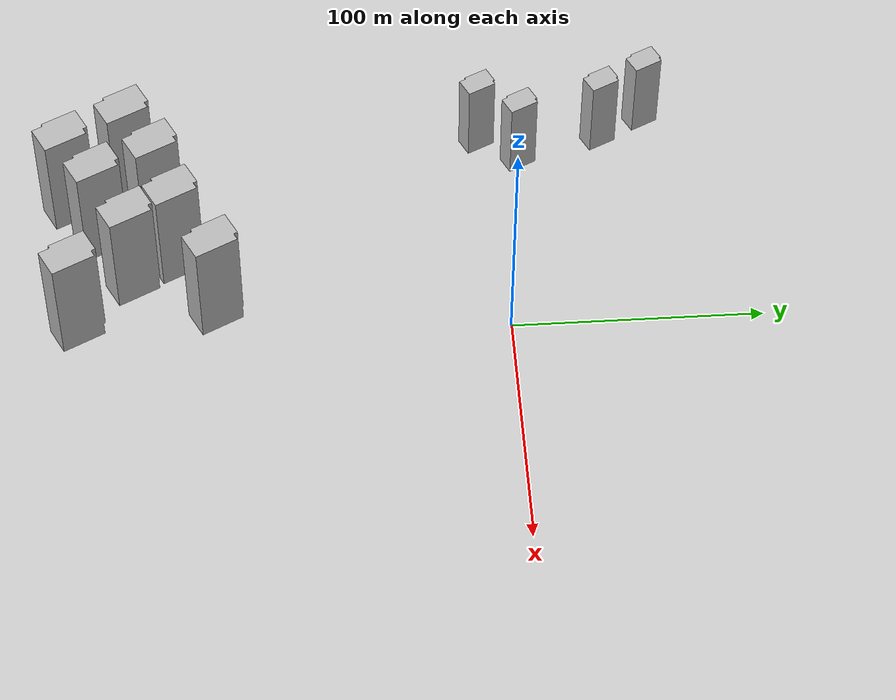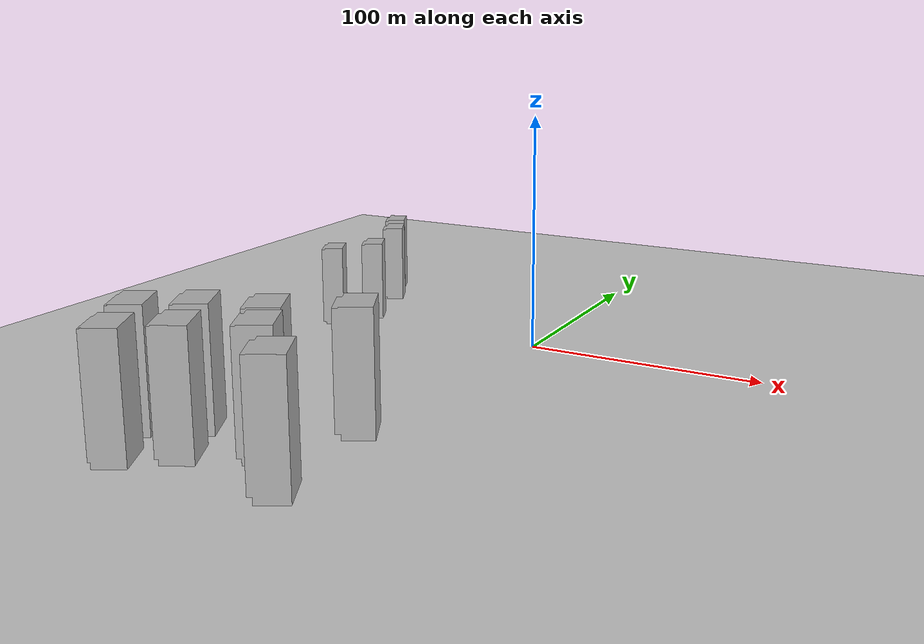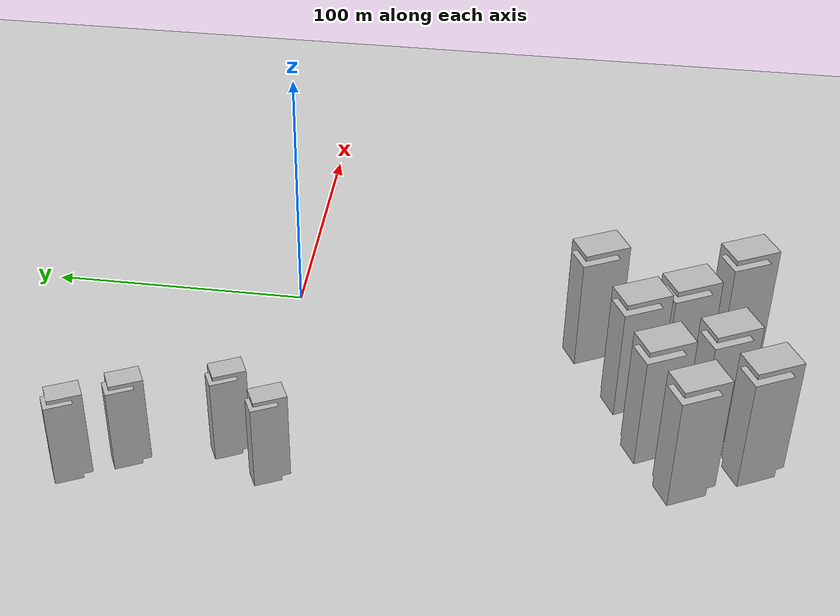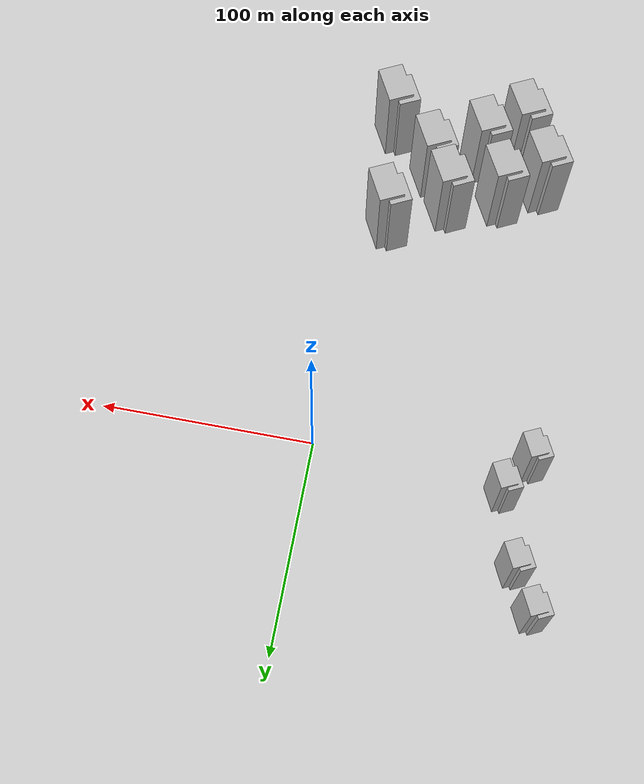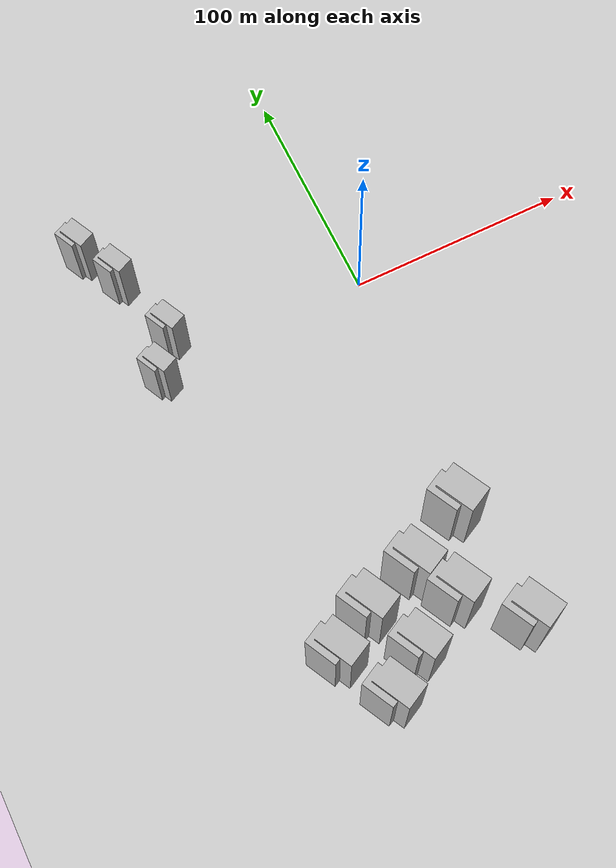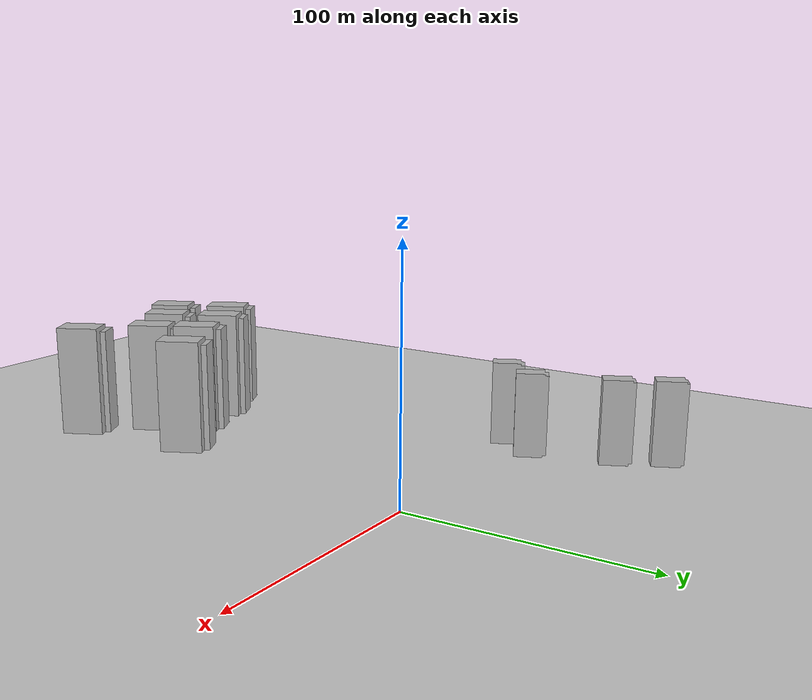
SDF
<sdf version="1.7">
 <world name="default">
  <model name="ground_plane">
   <static>1</static>
   <link name="link">
    <collision name="collision">
     <geometry><plane><normal>0 0 1</normal><size>100 100</size></plane></geometry>
     <surface><friction><ode><mu>100</mu><mu2>50</mu2></ode></friction></surface>
    </collision>
    <visual name="visual">
     <cast_shadows>0</cast_shadows>
     <geometry><plane><normal>0 0 1</normal><size>100 100</size></plane></geometry>
     <material>
      <script><uri>file://media/materials/scripts/gazebo.material</uri><name>Gazebo/Grey</name></script>
     </material>
    </visual>
   </link>
  </model>
  <model name="apartment1_clone_15_clone_3_clone_0_clone_12">
   <static>1</static>
   <link name="link_0">
    <inertial>
     <mass>1</mass>
     <inertia>
      <ixx>0.166667</ixx>
      <ixy>0</ixy>
      <ixz>0</ixz>
      <iyy>0.166667</iyy>
      <iyz>0</iyz>
      <izz>0.166667</izz>
     </inertia>
    </inertial>
    <pose>1e-06 -0 0 0 -0 0</pose>
    <visual name="visual">
     <geometry>
      <mesh><uri>model://apartment1/scripts/apartment1.dae</uri><scale>0.3 0.3 0.4</scale></mesh>
     </geometry>
     <material>
      <lighting>1</lighting>
      <script><uri>model://apartment1/scripts/apartment1.jpg</uri><name>__default__</name></script>
      <shader type="pixel"/>
     </material>
    </visual>
    <collision name="collision">
     <geometry>
      <mesh><uri>model://apartment1/scripts/apartment1.dae</uri><scale>0.3 0.3 0.4</scale></mesh>
     </geometry>
     <surface>
      <friction>
       <ode><mu>1</mu><mu2>1</mu2><fdir1>0 0 0</fdir1><slip1>0</slip1><slip2>0</slip2></ode>
       <torsional>
        <coefficient>1</coefficient>
        <patch_radius>0</patch_radius>
        <surface_radius>0</surface_radius>
        <use_patch_radius>1</use_patch_radius>
        <ode><slip>0</slip></ode>
       </torsional>
      </friction>
      <bounce><restitution_coefficient>0</restitution_coefficient><threshold>1e+06</threshold></bounce>
      <contact>
       <collide_without_contact>0</collide_without_contact>
       <collide_without_contact_bitmask>1</collide_without_contact_bitmask>
       <collide_bitmask>1</collide_bitmask>
       <ode>
        <soft_cfm>0</soft_cfm>
        <soft_erp>0.2</soft_erp>
        <kp>1e+13</kp>
        <kd>1</kd>
        <max_vel>0.01</max_vel>
        <min_depth>0</min_depth>
       </ode>
       <bullet>
        <split_impulse>1</split_impulse>
        <split_impulse_penetration_threshold>-0.01</split_impulse_penetration_threshold>
        <soft_cfm>0</soft_cfm>
        <soft_erp>0.2</soft_erp>
        <kp>1e+13</kp>
        <kd>1</kd>
       </bullet>
      </contact>
     </surface>
    </collision>
   </link>
   <static>0</static>
   <pose>-7.35773 -170.94 0 0 -0 0.473091</pose>
  </model>
  <model name="apartment1_clone_15_clone_3_clone_0_clone_13">
   <static>1</static>
   <link name="link_0">
    <inertial>
     <mass>1</mass>
     <inertia>
      <ixx>0.166667</ixx>
      <ixy>0</ixy>
      <ixz>0</ixz>
      <iyy>0.166667</iyy>
      <iyz>0</iyz>
      <izz>0.166667</izz>
     </inertia>
    </inertial>
    <pose>1e-06 -0 0 0 -0 0</pose>
    <visual name="visual">
     <geometry>
      <mesh><uri>model://apartment1/scripts/apartment1.dae</uri><scale>0.3 0.3 0.4</scale></mesh>
     </geometry>
     <material>
      <lighting>1</lighting>
      <script><uri>model://apartment1/scripts/apartment1.jpg</uri><name>__default__</name></script>
      <shader type="pixel"/>
     </material>
    </visual>
    <collision name="collision">
     <geometry>
      <mesh><uri>model://apartment1/scripts/apartment1.dae</uri><scale>0.3 0.3 0.4</scale></mesh>
     </geometry>
     <surface>
      <friction>
       <ode><mu>1</mu><mu2>1</mu2><fdir1>0 0 0</fdir1><slip1>0</slip1><slip2>0</slip2></ode>
       <torsional>
        <coefficient>1</coefficient>
        <patch_radius>0</patch_radius>
        <surface_radius>0</surface_radius>
        <use_patch_radius>1</use_patch_radius>
        <ode><slip>0</slip></ode>
       </torsional>
      </friction>
      <bounce><restitution_coefficient>0</restitution_coefficient><threshold>1e+06</threshold></bounce>
      <contact>
       <collide_without_contact>0</collide_without_contact>
       <collide_without_contact_bitmask>1</collide_without_contact_bitmask>
       <collide_bitmask>1</collide_bitmask>
       <ode>
        <soft_cfm>0</soft_cfm>
        <soft_erp>0.2</soft_erp>
        <kp>1e+13</kp>
        <kd>1</kd>
        <max_vel>0.01</max_vel>
        <min_depth>0</min_depth>
       </ode>
       <bullet>
        <split_impulse>1</split_impulse>
        <split_impulse_penetration_threshold>-0.01</split_impulse_penetration_threshold>
        <soft_cfm>0</soft_cfm>
        <soft_erp>0.2</soft_erp>
        <kp>1e+13</kp>
        <kd>1</kd>
       </bullet>
      </contact>
     </surface>
    </collision>
   </link>
   <static>0</static>
   <pose>-29.0155 -149.283 0 0 -0 0.473091</pose>
  </model>
  <model name="apartment1_clone_15_clone_3_clone_0_clone_14">
   <static>1</static>
   <link name="link_0">
    <inertial>
     <mass>1</mass>
     <inertia>
      <ixx>0.166667</ixx>
      <ixy>0</ixy>
      <ixz>0</ixz>
      <iyy>0.166667</iyy>
      <iyz>0</iyz>
      <izz>0.166667</izz>
     </inertia>
    </inertial>
    <pose>1e-06 -0 0 0 -0 0</pose>
    <visual name="visual">
     <geometry>
      <mesh><uri>model://apartment1/scripts/apartment1.dae</uri><scale>0.3 0.3 0.4</scale></mesh>
     </geometry>
     <material>
      <lighting>1</lighting>
      <script><uri>model://apartment1/scripts/apartment1.jpg</uri><name>__default__</name></script>
      <shader type="pixel"/>
     </material>
    </visual>
    <collision name="collision">
     <geometry>
      <mesh><uri>model://apartment1/scripts/apartment1.dae</uri><scale>0.3 0.3 0.4</scale></mesh>
     </geometry>
     <surface>
      <friction>
       <ode><mu>1</mu><mu2>1</mu2><fdir1>0 0 0</fdir1><slip1>0</slip1><slip2>0</slip2></ode>
       <torsional>
        <coefficient>1</coefficient>
        <patch_radius>0</patch_radius>
        <surface_radius>0</surface_radius>
        <use_patch_radius>1</use_patch_radius>
        <ode><slip>0</slip></ode>
       </torsional>
      </friction>
      <bounce><restitution_coefficient>0</restitution_coefficient><threshold>1e+06</threshold></bounce>
      <contact>
       <collide_without_contact>0</collide_without_contact>
       <collide_without_contact_bitmask>1</collide_without_contact_bitmask>
       <collide_bitmask>1</collide_bitmask>
       <ode>
        <soft_cfm>0</soft_cfm>
        <soft_erp>0.2</soft_erp>
        <kp>1e+13</kp>
        <kd>1</kd>
        <max_vel>0.01</max_vel>
        <min_depth>0</min_depth>
       </ode>
       <bullet>
        <split_impulse>1</split_impulse>
        <split_impulse_penetration_threshold>-0.01</split_impulse_penetration_threshold>
        <soft_cfm>0</soft_cfm>
        <soft_erp>0.2</soft_erp>
        <kp>1e+13</kp>
        <kd>1</kd>
       </bullet>
      </contact>
     </surface>
    </collision>
   </link>
   <static>0</static>
   <pose>-52.8974 -162.265 0 0 -0 0.473091</pose>
  </model>
  <model name="apartment1_clone_15_clone_3_clone_0_clone_27">
   <static>1</static>
   <link name="link_0">
    <inertial>
     <mass>1</mass>
     <inertia>
      <ixx>0.166667</ixx>
      <ixy>0</ixy>
      <ixz>0</ixz>
      <iyy>0.166667</iyy>
      <iyz>0</iyz>
      <izz>0.166667</izz>
     </inertia>
    </inertial>
    <pose>1e-06 -0 0 0 -0 0</pose>
    <visual name="visual">
     <geometry>
      <mesh><uri>model://apartment1/scripts/apartment1.dae</uri><scale>0.3 0.3 0.4</scale></mesh>
     </geometry>
     <material>
      <lighting>1</lighting>
      <script><uri>model://apartment1/scripts/apartment1.jpg</uri><name>__default__</name></script>
      <shader type="pixel"/>
     </material>
    </visual>
    <collision name="collision">
     <geometry>
      <mesh><uri>model://apartment1/scripts/apartment1.dae</uri><scale>0.3 0.3 0.4</scale></mesh>
     </geometry>
     <surface>
      <friction>
       <ode><mu>1</mu><mu2>1</mu2><fdir1>0 0 0</fdir1><slip1>0</slip1><slip2>0</slip2></ode>
       <torsional>
        <coefficient>1</coefficient>
        <patch_radius>0</patch_radius>
        <surface_radius>0</surface_radius>
        <use_patch_radius>1</use_patch_radius>
        <ode><slip>0</slip></ode>
       </torsional>
      </friction>
      <bounce><restitution_coefficient>0</restitution_coefficient><threshold>1e+06</threshold></bounce>
      <contact>
       <collide_without_contact>0</collide_without_contact>
       <collide_without_contact_bitmask>1</collide_without_contact_bitmask>
       <collide_bitmask>1</collide_bitmask>
       <ode>
        <soft_cfm>0</soft_cfm>
        <soft_erp>0.2</soft_erp>
        <kp>1e+13</kp>
        <kd>1</kd>
        <max_vel>0.01</max_vel>
        <min_depth>0</min_depth>
       </ode>
       <bullet>
        <split_impulse>1</split_impulse>
        <split_impulse_penetration_threshold>-0.01</split_impulse_penetration_threshold>
        <soft_cfm>0</soft_cfm>
        <soft_erp>0.2</soft_erp>
        <kp>1e+13</kp>
        <kd>1</kd>
       </bullet>
      </contact>
     </surface>
    </collision>
   </link>
   <static>0</static>
   <pose>-70.3385 -174.856 0 0 -0 0.473091</pose>
  </model>
  <model name="apartment1_clone_15_clone_3_clone_0_clone_28">
   <static>1</static>
   <link name="link_0">
    <inertial>
     <mass>1</mass>
     <inertia>
      <ixx>0.166667</ixx>
      <ixy>0</ixy>
      <ixz>0</ixz>
      <iyy>0.166667</iyy>
      <iyz>0</iyz>
      <izz>0.166667</izz>
     </inertia>
    </inertial>
    <pose>1e-06 -0 0 0 -0 0</pose>
    <visual name="visual">
     <geometry>
      <mesh><uri>model://apartment1/scripts/apartment1.dae</uri><scale>0.3 0.3 0.4</scale></mesh>
     </geometry>
     <material>
      <lighting>1</lighting>
      <script><uri>model://apartment1/scripts/apartment1.jpg</uri><name>__default__</name></script>
      <shader type="pixel"/>
     </material>
    </visual>
    <collision name="collision">
     <geometry>
      <mesh><uri>model://apartment1/scripts/apartment1.dae</uri><scale>0.3 0.3 0.4</scale></mesh>
     </geometry>
     <surface>
      <friction>
       <ode><mu>1</mu><mu2>1</mu2><fdir1>0 0 0</fdir1><slip1>0</slip1><slip2>0</slip2></ode>
       <torsional>
        <coefficient>1</coefficient>
        <patch_radius>0</patch_radius>
        <surface_radius>0</surface_radius>
        <use_patch_radius>1</use_patch_radius>
        <ode><slip>0</slip></ode>
       </torsional>
      </friction>
      <bounce><restitution_coefficient>0</restitution_coefficient><threshold>1e+06</threshold></bounce>
      <contact>
       <collide_without_contact>0</collide_without_contact>
       <collide_without_contact_bitmask>1</collide_without_contact_bitmask>
       <collide_bitmask>1</collide_bitmask>
       <ode>
        <soft_cfm>0</soft_cfm>
        <soft_erp>0.2</soft_erp>
        <kp>1e+13</kp>
        <kd>1</kd>
        <max_vel>0.01</max_vel>
        <min_depth>0</min_depth>
       </ode>
       <bullet>
        <split_impulse>1</split_impulse>
        <split_impulse_penetration_threshold>-0.01</split_impulse_penetration_threshold>
        <soft_cfm>0</soft_cfm>
        <soft_erp>0.2</soft_erp>
        <kp>1e+13</kp>
        <kd>1</kd>
       </bullet>
      </contact>
     </surface>
    </collision>
   </link>
   <static>0</static>
   <pose>-83.0012 -150.653 0 0 -0 0.473091</pose>
  </model>
  <model name="apartment1_clone_15_clone_3_clone_0_clone_29">
   <static>1</static>
   <link name="link_0">
    <inertial>
     <mass>1</mass>
     <inertia>
      <ixx>0.166667</ixx>
      <ixy>0</ixy>
      <ixz>0</ixz>
      <iyy>0.166667</iyy>
      <iyz>0</iyz>
      <izz>0.166667</izz>
     </inertia>
    </inertial>
    <pose>1e-06 -0 0 0 -0 0</pose>
    <visual name="visual">
     <geometry>
      <mesh><uri>model://apartment1/scripts/apartment1.dae</uri><scale>0.3 0.3 0.4</scale></mesh>
     </geometry>
     <material>
      <lighting>1</lighting>
      <script><uri>model://apartment1/scripts/apartment1.jpg</uri><name>__default__</name></script>
      <shader type="pixel"/>
     </material>
    </visual>
    <collision name="collision">
     <geometry>
      <mesh><uri>model://apartment1/scripts/apartment1.dae</uri><scale>0.3 0.3 0.4</scale></mesh>
     </geometry>
     <surface>
      <friction>
       <ode><mu>1</mu><mu2>1</mu2><fdir1>0 0 0</fdir1><slip1>0</slip1><slip2>0</slip2></ode>
       <torsional>
        <coefficient>1</coefficient>
        <patch_radius>0</patch_radius>
        <surface_radius>0</surface_radius>
        <use_patch_radius>1</use_patch_radius>
        <ode><slip>0</slip></ode>
       </torsional>
      </friction>
      <bounce><restitution_coefficient>0</restitution_coefficient><threshold>1e+06</threshold></bounce>
      <contact>
       <collide_without_contact>0</collide_without_contact>
       <collide_without_contact_bitmask>1</collide_without_contact_bitmask>
       <collide_bitmask>1</collide_bitmask>
       <ode>
        <soft_cfm>0</soft_cfm>
        <soft_erp>0.2</soft_erp>
        <kp>1e+13</kp>
        <kd>1</kd>
        <max_vel>0.01</max_vel>
        <min_depth>0</min_depth>
       </ode>
       <bullet>
        <split_impulse>1</split_impulse>
        <split_impulse_penetration_threshold>-0.01</split_impulse_penetration_threshold>
        <soft_cfm>0</soft_cfm>
        <soft_erp>0.2</soft_erp>
        <kp>1e+13</kp>
        <kd>1</kd>
       </bullet>
      </contact>
     </surface>
    </collision>
   </link>
   <static>0</static>
   <pose>-63.9581 -139.33 0 0 -0 0.473091</pose>
  </model>
  <model name="apartment1_clone_15_clone_3_clone_0_clone_30">
   <static>1</static>
   <link name="link_0">
    <inertial>
     <mass>1</mass>
     <inertia>
      <ixx>0.166667</ixx>
      <ixy>0</ixy>
      <ixz>0</ixz>
      <iyy>0.166667</iyy>
      <iyz>0</iyz>
      <izz>0.166667</izz>
     </inertia>
    </inertial>
    <pose>1e-06 -0 0 0 -0 0</pose>
    <visual name="visual">
     <geometry>
      <mesh><uri>model://apartment1/scripts/apartment1.dae</uri><scale>0.3 0.3 0.4</scale></mesh>
     </geometry>
     <material>
      <lighting>1</lighting>
      <script><uri>model://apartment1/scripts/apartment1.jpg</uri><name>__default__</name></script>
      <shader type="pixel"/>
     </material>
    </visual>
    <collision name="collision">
     <geometry>
      <mesh><uri>model://apartment1/scripts/apartment1.dae</uri><scale>0.3 0.3 0.4</scale></mesh>
     </geometry>
     <surface>
      <friction>
       <ode><mu>1</mu><mu2>1</mu2><fdir1>0 0 0</fdir1><slip1>0</slip1><slip2>0</slip2></ode>
       <torsional>
        <coefficient>1</coefficient>
        <patch_radius>0</patch_radius>
        <surface_radius>0</surface_radius>
        <use_patch_radius>1</use_patch_radius>
        <ode><slip>0</slip></ode>
       </torsional>
      </friction>
      <bounce><restitution_coefficient>0</restitution_coefficient><threshold>1e+06</threshold></bounce>
      <contact>
       <collide_without_contact>0</collide_without_contact>
       <collide_without_contact_bitmask>1</collide_without_contact_bitmask>
       <collide_bitmask>1</collide_bitmask>
       <ode>
        <soft_cfm>0</soft_cfm>
        <soft_erp>0.2</soft_erp>
        <kp>1e+13</kp>
        <kd>1</kd>
        <max_vel>0.01</max_vel>
        <min_depth>0</min_depth>
       </ode>
       <bullet>
        <split_impulse>1</split_impulse>
        <split_impulse_penetration_threshold>-0.01</split_impulse_penetration_threshold>
        <soft_cfm>0</soft_cfm>
        <soft_erp>0.2</soft_erp>
        <kp>1e+13</kp>
        <kd>1</kd>
       </bullet>
      </contact>
     </surface>
    </collision>
   </link>
   <static>0</static>
   <pose>-39.181 -131.636 0 0 -0 0.473091</pose>
  </model>
  <model name="apartment1_clone_15_clone_3_clone_0_clone_31">
   <static>1</static>
   <link name="link_0">
    <inertial>
     <mass>1</mass>
     <inertia>
      <ixx>0.166667</ixx>
      <ixy>0</ixy>
      <ixz>0</ixz>
      <iyy>0.166667</iyy>
      <iyz>0</iyz>
      <izz>0.166667</izz>
     </inertia>
    </inertial>
    <pose>1e-06 -0 0 0 -0 0</pose>
    <visual name="visual">
     <geometry>
      <mesh><uri>model://apartment1/scripts/apartment1.dae</uri><scale>0.3 0.3 0.4</scale></mesh>
     </geometry>
     <material>
      <lighting>1</lighting>
      <script><uri>model://apartment1/scripts/apartment1.jpg</uri><name>__default__</name></script>
      <shader type="pixel"/>
     </material>
    </visual>
    <collision name="collision">
     <geometry>
      <mesh><uri>model://apartment1/scripts/apartment1.dae</uri><scale>0.3 0.3 0.4</scale></mesh>
     </geometry>
     <surface>
      <friction>
       <ode><mu>1</mu><mu2>1</mu2><fdir1>0 0 0</fdir1><slip1>0</slip1><slip2>0</slip2></ode>
       <torsional>
        <coefficient>1</coefficient>
        <patch_radius>0</patch_radius>
        <surface_radius>0</surface_radius>
        <use_patch_radius>1</use_patch_radius>
        <ode><slip>0</slip></ode>
       </torsional>
      </friction>
      <bounce><restitution_coefficient>0</restitution_coefficient><threshold>1e+06</threshold></bounce>
      <contact>
       <collide_without_contact>0</collide_without_contact>
       <collide_without_contact_bitmask>1</collide_without_contact_bitmask>
       <collide_bitmask>1</collide_bitmask>
       <ode>
        <soft_cfm>0</soft_cfm>
        <soft_erp>0.2</soft_erp>
        <kp>1e+13</kp>
        <kd>1</kd>
        <max_vel>0.01</max_vel>
        <min_depth>0</min_depth>
       </ode>
       <bullet>
        <split_impulse>1</split_impulse>
        <split_impulse_penetration_threshold>-0.01</split_impulse_penetration_threshold>
        <soft_cfm>0</soft_cfm>
        <soft_erp>0.2</soft_erp>
        <kp>1e+13</kp>
        <kd>1</kd>
       </bullet>
      </contact>
     </surface>
    </collision>
   </link>
   <static>0</static>
   <pose>-12.2679 -116.406 0 0 -0 0.473091</pose>
  </model>
  <model name="apartment1_1_clone_clone">
   <static>1</static>
   <link name="link_0">
    <inertial>
     <mass>1</mass>
     <inertia>
      <ixx>0.166667</ixx>
      <ixy>0</ixy>
      <ixz>0</ixz>
      <iyy>0.166667</iyy>
      <iyz>0</iyz>
      <izz>0.166667</izz>
     </inertia>
    </inertial>
    <pose>1e-06 -0 0 0 -0 0</pose>
    <visual name="visual">
     <geometry>
      <mesh><uri>model://apartment1/scripts/apartment1.dae</uri><scale>0.2 0.2 0.3</scale></mesh>
     </geometry>
     <material>
      <lighting>1</lighting>
      <script><uri>model://apartment1/scripts/apartment1.jpg</uri><name>__default__</name></script>
      <shader type="pixel"/>
     </material>
    </visual>
    <collision name="collision">
     <geometry>
      <mesh><uri>model://apartment1/scripts/apartment1.dae</uri><scale>0.2 0.2 0.3</scale></mesh>
     </geometry>
     <surface>
      <friction>
       <ode><mu>1</mu><mu2>1</mu2><fdir1>0 0 0</fdir1><slip1>0</slip1><slip2>0</slip2></ode>
       <torsional>
        <coefficient>1</coefficient>
        <patch_radius>0</patch_radius>
        <surface_radius>0</surface_radius>
        <use_patch_radius>1</use_patch_radius>
        <ode><slip>0</slip></ode>
       </torsional>
      </friction>
      <bounce><restitution_coefficient>0</restitution_coefficient><threshold>1e+06</threshold></bounce>
      <contact>
       <collide_without_contact>0</collide_without_contact>
       <collide_without_contact_bitmask>1</collide_without_contact_bitmask>
       <collide_bitmask>1</collide_bitmask>
       <ode>
        <soft_cfm>0</soft_cfm>
        <soft_erp>0.2</soft_erp>
        <kp>1e+13</kp>
        <kd>1</kd>
        <max_vel>0.01</max_vel>
        <min_depth>0</min_depth>
       </ode>
       <bullet>
        <split_impulse>1</split_impulse>
        <split_impulse_penetration_threshold>-0.01</split_impulse_penetration_threshold>
        <soft_cfm>0</soft_cfm>
        <soft_erp>0.2</soft_erp>
        <kp>1e+13</kp>
        <kd>1</kd>
       </bullet>
      </contact>
     </surface>
    </collision>
   </link>
   <static>0</static>
   <pose>-96.53 43.3541 0 0 -0 0.45325</pose>
  </model>
  <model name="apartment1_1_clone_clone_0">
   <static>1</static>
   <link name="link_0">
    <inertial>
     <mass>1</mass>
     <inertia>
      <ixx>0.166667</ixx>
      <ixy>0</ixy>
      <ixz>0</ixz>
      <iyy>0.166667</iyy>
      <iyz>0</iyz>
      <izz>0.166667</izz>
     </inertia>
    </inertial>
    <pose>1e-06 -0 0 0 -0 0</pose>
    <visual name="visual">
     <geometry>
      <mesh><uri>model://apartment1/scripts/apartment1.dae</uri><scale>0.2 0.2 0.3</scale></mesh>
     </geometry>
     <material>
      <lighting>1</lighting>
      <script><uri>model://apartment1/scripts/apartment1.jpg</uri><name>__default__</name></script>
      <shader type="pixel"/>
     </material>
    </visual>
    <collision name="collision">
     <geometry>
      <mesh><uri>model://apartment1/scripts/apartment1.dae</uri><scale>0.2 0.2 0.3</scale></mesh>
     </geometry>
     <surface>
      <friction>
       <ode><mu>1</mu><mu2>1</mu2><fdir1>0 0 0</fdir1><slip1>0</slip1><slip2>0</slip2></ode>
       <torsional>
        <coefficient>1</coefficient>
        <patch_radius>0</patch_radius>
        <surface_radius>0</surface_radius>
        <use_patch_radius>1</use_patch_radius>
        <ode><slip>0</slip></ode>
       </torsional>
      </friction>
      <bounce><restitution_coefficient>0</restitution_coefficient><threshold>1e+06</threshold></bounce>
      <contact>
       <collide_without_contact>0</collide_without_contact>
       <collide_without_contact_bitmask>1</collide_without_contact_bitmask>
       <collide_bitmask>1</collide_bitmask>
       <ode>
        <soft_cfm>0</soft_cfm>
        <soft_erp>0.2</soft_erp>
        <kp>1e+13</kp>
        <kd>1</kd>
        <max_vel>0.01</max_vel>
        <min_depth>0</min_depth>
       </ode>
       <bullet>
        <split_impulse>1</split_impulse>
        <split_impulse_penetration_threshold>-0.01</split_impulse_penetration_threshold>
        <soft_cfm>0</soft_cfm>
        <soft_erp>0.2</soft_erp>
        <kp>1e+13</kp>
        <kd>1</kd>
       </bullet>
      </contact>
     </surface>
    </collision>
   </link>
   <static>0</static>
   <pose>-106.507 61.9107 0 0 -0 0.45325</pose>
  </model>
  <model name="apartment1_1_clone_clone_8">
   <static>1</static>
   <link name="link_0">
    <inertial>
     <mass>1</mass>
     <inertia>
      <ixx>0.166667</ixx>
      <ixy>0</ixy>
      <ixz>0</ixz>
      <iyy>0.166667</iyy>
      <iyz>0</iyz>
      <izz>0.166667</izz>
     </inertia>
    </inertial>
    <pose>1e-06 -0 0 0 -0 0</pose>
    <visual name="visual">
     <geometry>
      <mesh><uri>model://apartment1/scripts/apartment1.dae</uri><scale>0.2 0.2 0.3</scale></mesh>
     </geometry>
     <material>
      <lighting>1</lighting>
      <script><uri>model://apartment1/scripts/apartment1.jpg</uri><name>__default__</name></script>
      <shader type="pixel"/>
     </material>
    </visual>
    <collision name="collision">
     <geometry>
      <mesh><uri>model://apartment1/scripts/apartment1.dae</uri><scale>0.2 0.2 0.3</scale></mesh>
     </geometry>
     <surface>
      <friction>
       <ode><mu>1</mu><mu2>1</mu2><fdir1>0 0 0</fdir1><slip1>0</slip1><slip2>0</slip2></ode>
       <torsional>
        <coefficient>1</coefficient>
        <patch_radius>0</patch_radius>
        <surface_radius>0</surface_radius>
        <use_patch_radius>1</use_patch_radius>
        <ode><slip>0</slip></ode>
       </torsional>
      </friction>
      <bounce><restitution_coefficient>0</restitution_coefficient><threshold>1e+06</threshold></bounce>
      <contact>
       <collide_without_contact>0</collide_without_contact>
       <collide_without_contact_bitmask>1</collide_without_contact_bitmask>
       <collide_bitmask>1</collide_bitmask>
       <ode>
        <soft_cfm>0</soft_cfm>
        <soft_erp>0.2</soft_erp>
        <kp>1e+13</kp>
        <kd>1</kd>
        <max_vel>0.01</max_vel>
        <min_depth>0</min_depth>
       </ode>
       <bullet>
        <split_impulse>1</split_impulse>
        <split_impulse_penetration_threshold>-0.01</split_impulse_penetration_threshold>
        <soft_cfm>0</soft_cfm>
        <soft_erp>0.2</soft_erp>
        <kp>1e+13</kp>
        <kd>1</kd>
       </bullet>
      </contact>
     </surface>
    </collision>
   </link>
   <static>0</static>
   <pose>-86.7846 9.40258 0 0 -0 0.45325</pose>
  </model>
  <model name="apartment1_1_clone_clone_2_clone_4">
   <static>1</static>
   <link name="link_0">
    <inertial>
     <mass>1</mass>
     <inertia>
      <ixx>0.166667</ixx>
      <ixy>0</ixy>
      <ixz>0</ixz>
      <iyy>0.166667</iyy>
      <iyz>0</iyz>
      <izz>0.166667</izz>
     </inertia>
    </inertial>
    <pose>1e-06 -0 0 0 -0 0</pose>
    <visual name="visual">
     <geometry>
      <mesh><uri>model://apartment1/scripts/apartment1.dae</uri><scale>0.2 0.2 0.3</scale></mesh>
     </geometry>
     <material>
      <lighting>1</lighting>
      <script><uri>model://apartment1/scripts/apartment1.jpg</uri><name>__default__</name></script>
      <shader type="pixel"/>
     </material>
    </visual>
    <collision name="collision">
     <geometry>
      <mesh><uri>model://apartment1/scripts/apartment1.dae</uri><scale>0.2 0.2 0.3</scale></mesh>
     </geometry>
     <surface>
      <friction>
       <ode><mu>1</mu><mu2>1</mu2><fdir1>0 0 0</fdir1><slip1>0</slip1><slip2>0</slip2></ode>
       <torsional>
        <coefficient>1</coefficient>
        <patch_radius>0</patch_radius>
        <surface_radius>0</surface_radius>
        <use_patch_radius>1</use_patch_radius>
        <ode><slip>0</slip></ode>
       </torsional>
      </friction>
      <bounce><restitution_coefficient>0</restitution_coefficient><threshold>1e+06</threshold></bounce>
      <contact>
       <collide_without_contact>0</collide_without_contact>
       <collide_without_contact_bitmask>1</collide_without_contact_bitmask>
       <collide_bitmask>1</collide_bitmask>
       <ode>
        <soft_cfm>0</soft_cfm>
        <soft_erp>0.2</soft_erp>
        <kp>1e+13</kp>
        <kd>1</kd>
        <max_vel>0.01</max_vel>
        <min_depth>0</min_depth>
       </ode>
       <bullet>
        <split_impulse>1</split_impulse>
        <split_impulse_penetration_threshold>-0.01</split_impulse_penetration_threshold>
        <soft_cfm>0</soft_cfm>
        <soft_erp>0.2</soft_erp>
        <kp>1e+13</kp>
        <kd>1</kd>
       </bullet>
      </contact>
     </surface>
    </collision>
   </link>
   <static>0</static>
   <pose>-97.8439 -6.99275 0 0 -0 0.45325</pose>
  </model>
 </world>
</sdf>
